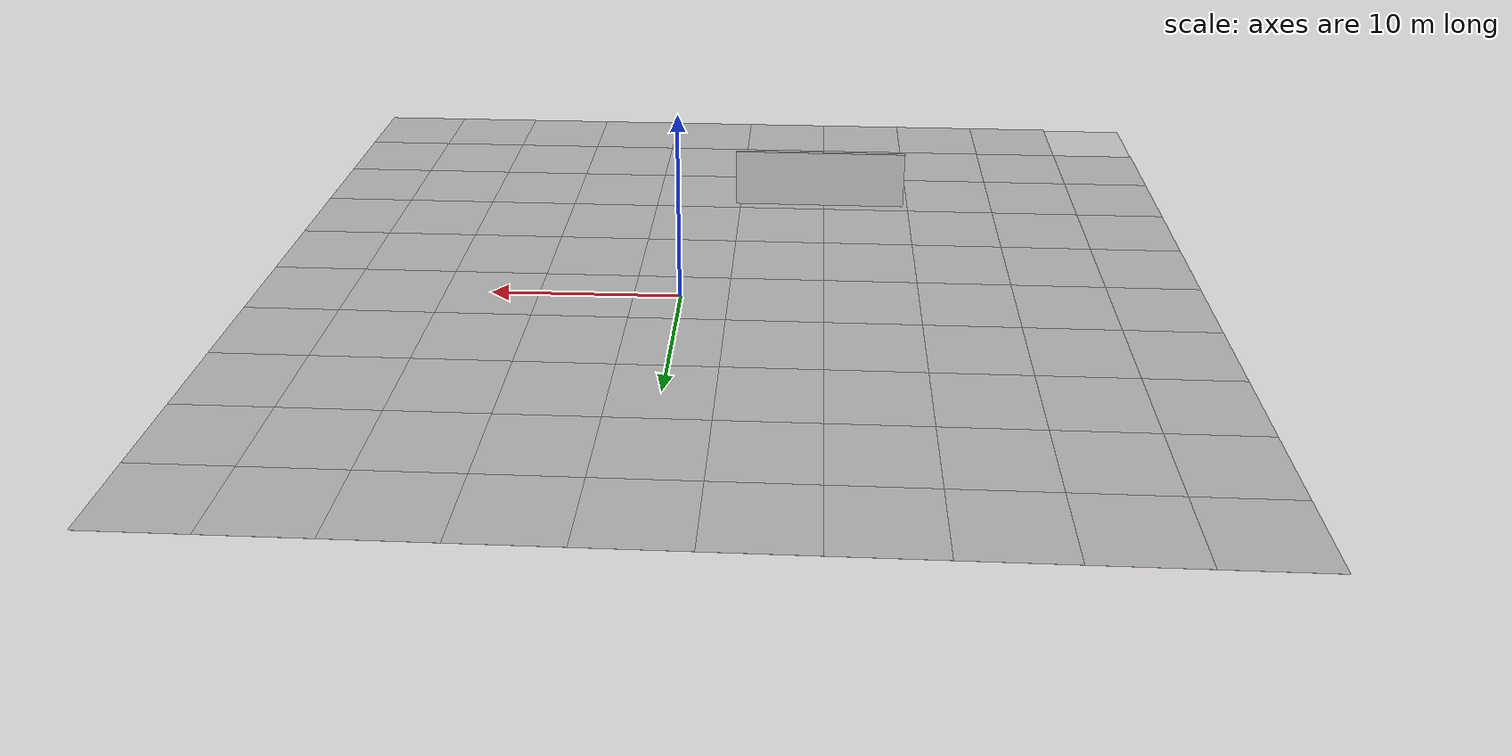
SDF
<sdf version="1.4">
 <world name="drc_practice_task_6">
  <scene><grid>false</grid><ambient>0.2 0.2 0.2 1.0</ambient></scene>
  <physics type="ode">
   <gravity>0 0 -9.81</gravity>
   <ode>
    <solver><type>quick</type><iters>50</iters><sor>1.4</sor></solver>
    <constraints>
     <cfm>0.0</cfm>
     <erp>0.2</erp>
     <contact_max_correcting_vel>100.0</contact_max_correcting_vel>
     <contact_surface_layer>0.0</contact_surface_layer>
    </constraints>
   </ode>
   <real_time_update_rate>1000</real_time_update_rate>
   <max_step_size>0.001</max_step_size>
  </physics>
  <light type="directional" name="sun">
   <pose>0 0 100 0 0 0</pose>
   <diffuse>0.9 0.9 0.9 1</diffuse>
   <specular>0.1 0.1 0.1 1</specular>
   <attenuation>
    <range>1000</range>
    <constant>0.9</constant>
    <linear>0.01</linear>
    <quadratic>0.001</quadratic>
   </attenuation>
   <direction>0.2 0.2 -0.9</direction>
  </light>
  <light type="point" name="light_bulb_2">
   <cast_shadows>false</cast_shadows>
   <pose>-10.6 -19.8 5 0 0 0</pose>
   <diffuse>0.5 0.5 0.5 1</diffuse>
   <specular>0.0 0.0 0.0 1</specular>
   <attenuation>
    <range>80</range>
    <constant>0.9</constant>
    <linear>0.01</linear>
    <quadratic>0.001</quadratic>
   </attenuation>
  </light>
  <include><uri>model://pavement_plane</uri></include>
  <include><uri>model://cutout_wall</uri><name>cutout_wall</name><pose>-7.23 -13.25 0 0 0 0</pose></include>
  <include><uri>model://table</uri><static>true</static><pose>-11.5 -15.2 0 0 0 1.5707</pose></include>
  <plugin filename="libVRCPlugin.so" name="vrc_plugin">
   <atlas><model_name>atlas</model_name><pin_link>pelvis</pin_link></atlas>
   <drc_vehicle><model_name>golf_cart</model_name><seat_link>chassis</seat_link></drc_vehicle>
   <drc_fire_hose>
    <fire_hose_model>vrc_firehose_long</fire_hose_model>
    <coupling_link>coupling</coupling_link>
    <standpipe_model>standpipe</standpipe_model>
    <spout_link>standpipe</spout_link>
    <valve_model>valve</valve_model>
    <valve_joint>valve</valve_joint>
    <thread_pitch>-1000</thread_pitch>
    <coupling_relative_pose>0.001784 -4.6e-05 0.023 1.56985 1.55991 -0.000936</coupling_relative_pose>
   </drc_fire_hose>
  </plugin>
 </world>
</sdf>

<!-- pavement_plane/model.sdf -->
<sdf version='1.4'>
  <model name='pavement_plane'>
    <static>true</static>
    <link name='link'>
      <collision name='collision'>
        <geometry>
          <plane>
            <normal>0 0 1</normal>
            <size>50 50</size>
          </plane>
        </geometry>
        <surface>
          <friction>
            <ode>
              <mu>100</mu>
              <mu2>50</mu2>
            </ode>
          </friction>
        </surface>
      </collision>

  <visual name='visual_0'>
    <pose>-25 -25 0 0 0 0</pose>

      <cast_shadows>false</cast_shadows>
      <geometry>
        <plane>
          <normal>0 0 1</normal>
          <size>5 5</size>
        </plane>
      </geometry>
      <material>
        <script>
          <uri>model://pavement_plane/materials/scripts</uri>
          <uri>model://pavement_plane/materials/textures</uri>
          <name>vrc/pavement</name>
        </script>
      </material>
    </visual>

  <visual name='visual_1'>
    <pose>-20 -25 0 0 0 0</pose>

      <cast_shadows>false</cast_shadows>
      <geometry>
        <plane>
          <normal>0 0 1</normal>
          <size>5 5</size>
        </plane>
      </geometry>
      <material>
        <script>
          <uri>model://pavement_plane/materials/scripts</uri>
          <uri>model://pavement_plane/materials/textures</uri>
          <name>vrc/pavement</name>
        </script>
      </material>
    </visual>

  <visual name='visual_2'>
    <pose>-15 -25 0 0 0 0</pose>

      <cast_shadows>false</cast_shadows>
      <geometry>
        <plane>
          <normal>0 0 1</normal>
          <size>5 5</size>
        </plane>
      </geometry>
      <material>
        <script>
          <uri>model://pavement_plane/materials/scripts</uri>
          <uri>model://pavement_plane/materials/textures</uri>
          <name>vrc/pavement</name>
        </script>
      </material>
    </visual>

  <visual name='visual_3'>
    <pose>-10 -25 0 0 0 0</pose>

      <cast_shadows>false</cast_shadows>
      <geometry>
        <plane>
          <normal>0 0 1</normal>
          <size>5 5</size>
        </plane>
      </geometry>
      <material>
        <script>
          <uri>model://pavement_plane/materials/scripts</uri>
          <uri>model://pavement_plane/materials/textures</uri>
          <name>vrc/pavement</name>
        </script>
      </material>
    </visual>

  <visual name='visual_4'>
    <pose>-5 -25 0 0 0 0</pose>

      <cast_shadows>false</cast_shadows>
      <geometry>
        <plane>
          <normal>0 0 1</normal>
          <size>5 5</size>
        </plane>
      </geometry>
      <material>
        <script>
          <uri>model://pavement_plane/materials/scripts</uri>
          <uri>model://pavement_plane/materials/textures</uri>
          <name>vrc/pavement</name>
        </script>
      </material>
    </visual>

  <visual name='visual_5'>
    <pose>0 -25 0 0 0 0</pose>

      <cast_shadows>false</cast_shadows>
      <geometry>
        <plane>
          <normal>0 0 1</normal>
          <size>5 5</size>
        </plane>
      </geometry>
      <material>
        <script>
          <uri>model://pavement_plane/materials/scripts</uri>
          <uri>model://pavement_plane/materials/textures</uri>
          <name>vrc/pavement</name>
        </script>
      </material>
    </visual>

  <visual name='visual_6'>
    <pose>5 -25 0 0 0 0</pose>

      <cast_shadows>false</cast_shadows>
      <geometry>
        <plane>
          <normal>0 0 1</normal>
          <size>5 5</size>
        </plane>
      </geometry>
      <material>
        <script>
          <uri>model://pavement_plane/materials/scripts</uri>
          <uri>model://pavement_plane/materials/textures</uri>
          <name>vrc/pavement</name>
        </script>
      </material>
    </visual>

  <visual name='visual_7'>
    <pose>10 -25 0 0 0 0</pose>

      <cast_shadows>false</cast_shadows>
      <geometry>
        <plane>
          <normal>0 0 1</normal>
          <size>5 5</size>
        </plane>
      </geometry>
      <material>
        <script>
          <uri>model://pavement_plane/materials/scripts</uri>
          <uri>model://pavement_plane/materials/textures</uri>
          <name>vrc/pavement</name>
        </script>
      </material>
    </visual>

  <visual name='visual_8'>
    <pose>15 -25 0 0 0 0</pose>

      <cast_shadows>false</cast_shadows>
      <geometry>
        <plane>
          <normal>0 0 1</normal>
          <size>5 5</size>
        </plane>
      </geometry>
      <material>
        <script>
          <uri>model://pavement_plane/materials/scripts</uri>
          <uri>model://pavement_plane/materials/textures</uri>
          <name>vrc/pavement</name>
        </script>
      </material>
    </visual>

  <visual name='visual_9'>
    <pose>20 -25 0 0 0 0</pose>

      <cast_shadows>false</cast_shadows>
      <geometry>
        <plane>
          <normal>0 0 1</normal>
          <size>5 5</size>
        </plane>
      </geometry>
      <material>
        <script>
          <uri>model://pavement_plane/materials/scripts</uri>
          <uri>model://pavement_plane/materials/textures</uri>
          <name>vrc/pavement</name>
        </script>
      </material>
    </visual>

  <visual name='visual_10'>
    <pose>-25 -20 0 0 0 0</pose>

      <cast_shadows>false</cast_shadows>
      <geometry>
        <plane>
          <normal>0 0 1</normal>
          <size>5 5</size>
        </plane>
      </geometry>
      <material>
        <script>
          <uri>model://pavement_plane/materials/scripts</uri>
          <uri>model://pavement_plane/materials/textures</uri>
          <name>vrc/pavement</name>
        </script>
      </material>
    </visual>

  <visual name='visual_11'>
    <pose>-20 -20 0 0 0 0</pose>

      <cast_shadows>false</cast_shadows>
      <geometry>
        <plane>
          <normal>0 0 1</normal>
          <size>5 5</size>
        </plane>
      </geometry>
      <material>
        <script>
          <uri>model://pavement_plane/materials/scripts</uri>
          <uri>model://pavement_plane/materials/textures</uri>
          <name>vrc/pavement</name>
        </script>
      </material>
    </visual>

  <visual name='visual_12'>
    <pose>-15 -20 0 0 0 0</pose>

      <cast_shadows>false</cast_shadows>
      <geometry>
        <plane>
          <normal>0 0 1</normal>
          <size>5 5</size>
        </plane>
      </geometry>
      <material>
        <script>
          <uri>model://pavement_plane/materials/scripts</uri>
          <uri>model://pavement_plane/materials/textures</uri>
          <name>vrc/pavement</name>
        </script>
      </material>
    </visual>

  <visual name='visual_13'>
    <pose>-10 -20 0 0 0 0</pose>

      <cast_shadows>false</cast_shadows>
      <geometry>
        <plane>
          <normal>0 0 1</normal>
          <size>5 5</size>
        </plane>
      </geometry>
      <material>
        <script>
          <uri>model://pavement_plane/materials/scripts</uri>
          <uri>model://pavement_plane/materials/textures</uri>
          <name>vrc/pavement</name>
        </script>
      </material>
    </visual>

  <visual name='visual_14'>
    <pose>-5 -20 0 0 0 0</pose>

      <cast_shadows>false</cast_shadows>
      <geometry>
        <plane>
          <normal>0 0 1</normal>
          <size>5 5</size>
        </plane>
      </geometry>
      <material>
        <script>
          <uri>model://pavement_plane/materials/scripts</uri>
          <uri>model://pavement_plane/materials/textures</uri>
          <name>vrc/pavement</name>
        </script>
      </material>
    </visual>

  <visual name='visual_15'>
    <pose>0 -20 0 0 0 0</pose>

      <cast_shadows>false</cast_shadows>
      <geometry>
        <plane>
          <normal>0 0 1</normal>
          <size>5 5</size>
        </plane>
      </geometry>
      <material>
        <script>
          <uri>model://pavement_plane/materials/scripts</uri>
          <uri>model://pavement_plane/materials/textures</uri>
          <name>vrc/pavement</name>
        </script>
      </material>
    </visual>

  <visual name='visual_16'>
    <pose>5 -20 0 0 0 0</pose>

      <cast_shadows>false</cast_shadows>
      <geometry>
        <plane>
          <normal>0 0 1</normal>
          <size>5 5</size>
        </plane>
      </geometry>
      <material>
        <script>
          <uri>model://pavement_plane/materials/scripts</uri>
          <uri>model://pavement_plane/materials/textures</uri>
          <name>vrc/pavement</name>
        </script>
      </material>
    </visual>

  <visual name='visual_17'>
    <pose>10 -20 0 0 0 0</pose>

      <cast_shadows>false</cast_shadows>
      <geometry>
        <plane>
          <normal>0 0 1</normal>
          <size>5 5</size>
        </plane>
      </geometry>
      <material>
        <script>
          <uri>model://pavement_plane/materials/scripts</uri>
          <uri>model://pavement_plane/materials/textures</uri>
          <name>vrc/pavement</name>
        </script>
      </material>
    </visual>

  <visual name='visual_18'>
    <pose>15 -20 0 0 0 0</pose>

      <cast_shadows>false</cast_shadows>
      <geometry>
        <plane>
          <normal>0 0 1</normal>
          <size>5 5</size>
        </plane>
      </geometry>
      <material>
        <script>
          <uri>model://pavement_plane/materials/scripts</uri>
          <uri>model://pavement_plane/materials/textures</uri>
          <name>vrc/pavement</name>
        </script>
      </material>
    </visual>

  <visual name='visual_19'>
    <pose>20 -20 0 0 0 0</pose>

      <cast_shadows>false</cast_shadows>
      <geometry>
        <plane>
          <normal>0 0 1</normal>
          <size>5 5</size>
        </plane>
      </geometry>
      <material>
        <script>
          <uri>model://pavement_plane/materials/scripts</uri>
          <uri>model://pavement_plane/materials/textures</uri>
          <name>vrc/pavement</name>
        </script>
      </material>
    </visual>

  <visual name='visual_20'>
    <pose>-25 -15 0 0 0 0</pose>

      <cast_shadows>false</cast_shadows>
      <geometry>
        <plane>
          <normal>0 0 1</normal>
          <size>5 5</size>
        </plane>
      </geometry>
      <material>
        <script>
          <uri>model://pavement_plane/materials/scripts</uri>
          <uri>model://pavement_plane/materials/textures</uri>
          <name>vrc/pavement</name>
        </script>
      </material>
    </visual>

  <visual name='visual_21'>
    <pose>-20 -15 0 0 0 0</pose>

      <cast_shadows>false</cast_shadows>
      <geometry>
        <plane>
          <normal>0 0 1</normal>
          <size>5 5</size>
        </plane>
      </geometry>
      <material>
        <script>
          <uri>model://pavement_plane/materials/scripts</uri>
          <uri>model://pavement_plane/materials/textures</uri>
          <name>vrc/pavement</name>
        </script>
      </material>
    </visual>

  <visual name='visual_22'>
    <pose>-15 -15 0 0 0 0</pose>

      <cast_shadows>false</cast_shadows>
      <geometry>
        <plane>
          <normal>0 0 1</normal>
          <size>5 5</size>
        </plane>
      </geometry>
      <material>
        <script>
          <uri>model://pavement_plane/materials/scripts</uri>
          <uri>model://pavement_plane/materials/textures</uri>
          <name>vrc/pavement</name>
        </script>
      </material>
    </visual>

  <visual name='visual_23'>
    <pose>-10 -15 0 0 0 0</pose>

      <cast_shadows>false</cast_shadows>
      <geometry>
        <plane>
          <normal>0 0 1</normal>
          <size>5 5</size>
        </plane>
      </geometry>
      <material>
        <script>
          <uri>model://pavement_plane/materials/scripts</uri>
          <uri>model://pavement_plane/materials/textures</uri>
          <name>vrc/pavement</name>
        </script>
      </material>
    </visual>

  <visual name='visual_24'>
    <pose>-5 -15 0 0 0 0</pose>

      <cast_shadows>false</cast_shadows>
      <geometry>
        <plane>
          <normal>0 0 1</normal>
          <size>5 5</size>
        </plane>
      </geometry>
      <material>
        <script>
          <uri>model://pavement_plane/materials/scripts</uri>
          <uri>model://pavement_plane/materials/textures</uri>
          <name>vrc/pavement</name>
        </script>
      </material>
    </visual>

  <visual name='visual_25'>
    <pose>0 -15 0 0 0 0</pose>

      <cast_shadows>false</cast_shadows>
      <geometry>
        <plane>
          <normal>0 0 1</normal>
          <size>5 5</size>
        </plane>
      </geometry>
      <material>
        <script>
          <uri>model://pavement_plane/materials/scripts</uri>
          <uri>model://pavement_plane/materials/textures</uri>
          <name>vrc/pavement</name>
        </script>
      </material>
    </visual>

  <visual name='visual_26'>
    <pose>5 -15 0 0 0 0</pose>

      <cast_shadows>false</cast_shadows>
      <geometry>
        <plane>
          <normal>0 0 1</normal>
          <size>5 5</size>
        </plane>
      </geometry>
      <material>
        <script>
          <uri>model://pavement_plane/materials/scripts</uri>
          <uri>model://pavement_plane/materials/textures</uri>
          <name>vrc/pavement</name>
        </script>
      </material>
    </visual>

  <visual name='visual_27'>
    <pose>10 -15 0 0 0 0</pose>

      <cast_shadows>false</cast_shadows>
      <geometry>
        <plane>
          <normal>0 0 1</normal>
          <size>5 5</size>
        </plane>
      </geometry>
      <material>
        <script>
          <uri>model://pavement_plane/materials/scripts</uri>
          <uri>model://pavement_plane/materials/textures</uri>
          <name>vrc/pavement</name>
        </script>
      </material>
    </visual>

  <visual name='visual_28'>
    <pose>15 -15 0 0 0 0</pose>

      <cast_shadows>false</cast_shadows>
      <geometry>
        <plane>
          <normal>0 0 1</normal>
          <size>5 5</size>
        </plane>
      </geometry>
      <material>
        <script>
          <uri>model://pavement_plane/materials/scripts</uri>
          <uri>model://pavement_plane/materials/textures</uri>
          <name>vrc/pavement</name>
        </script>
      </material>
    </visual>

  <visual name='visual_29'>
    <pose>20 -15 0 0 0 0</pose>

      <cast_shadows>false</cast_shadows>
      <geometry>
        <plane>
          <normal>0 0 1</normal>
          <size>5 5</size>
        </plane>
      </geometry>
      <material>
        <script>
          <uri>model://pavement_plane/materials/scripts</uri>
          <uri>model://pavement_plane/materials/textures</uri>
          <name>vrc/pavement</name>
        </script>
      </material>
    </visual>

  <visual name='visual_30'>
    <pose>-25 -10 0 0 0 0</pose>

      <cast_shadows>false</cast_shadows>
      <geometry>
        <plane>
          <normal>0 0 1</normal>
          <size>5 5</size>
        </plane>
      </geometry>
      <material>
        <script>
          <uri>model://pavement_plane/materials/scripts</uri>
          <uri>model://pavement_plane/materials/textures</uri>
          <name>vrc/pavement</name>
        </script>
      </material>
    </visual>

  <visual name='visual_31'>
    <pose>-20 -10 0 0 0 0</pose>

      <cast_shadows>false</cast_shadows>
      <geometry>
        <plane>
          <normal>0 0 1</normal>
          <size>5 5</size>
        </plane>
      </geometry>
      <material>
        <script>
          <uri>model://pavement_plane/materials/scripts</uri>
          <uri>model://pavement_plane/materials/textures</uri>
          <name>vrc/pavement</name>
        </script>
      </material>
    </visual>

  <visual name='visual_32'>
    <pose>-15 -10 0 0 0 0</pose>

      <cast_shadows>false</cast_shadows>
      <geometry>
        <plane>
          <normal>0 0 1</normal>
          <size>5 5</size>
        </plane>
      </geometry>
      <material>
        <script>
          <uri>model://pavement_plane/materials/scripts</uri>
          <uri>model://pavement_plane/materials/textures</uri>
          <name>vrc/pavement</name>
        </script>
      </material>
    </visual>

  <visual name='visual_33'>
    <pose>-10 -10 0 0 0 0</pose>

      <cast_shadows>false</cast_shadows>
      <geometry>
        <plane>
          <normal>0 0 1</normal>
          <size>5 5</size>
        </plane>
      </geometry>
      <material>
        <script>
          <uri>model://pavement_plane/materials/scripts</uri>
          <uri>model://pavement_plane/materials/textures</uri>
          <name>vrc/pavement</name>
        </script>
      </material>
    </visual>

  <visual name='visual_34'>
    <pose>-5 -10 0 0 0 0</pose>

      <cast_shadows>false</cast_shadows>
      <geometry>
        <plane>
          <normal>0 0 1</normal>
          <size>5 5</size>
        </plane>
      </geometry>
      <material>
        <script>
          <uri>model://pavement_plane/materials/scripts</uri>
          <uri>model://pavement_plane/materials/textures</uri>
          <name>vrc/pavement</name>
        </script>
      </material>
    </visual>

  <visual name='visual_35'>
    <pose>0 -10 0 0 0 0</pose>

      <cast_shadows>false</cast_shadows>
      <geometry>
        <plane>
          <normal>0 0 1</normal>
          <size>5 5</size>
        </plane>
      </geometry>
      <material>
        <script>
          <uri>model://pavement_plane/materials/scripts</uri>
          <uri>model://pavement_plane/materials/textures</uri>
          <name>vrc/pavement</name>
        </script>
      </material>
    </visual>

  <visual name='visual_36'>
    <pose>5 -10 0 0 0 0</pose>

      <cast_shadows>false</cast_shadows>
      <geometry>
        <plane>
          <normal>0 0 1</normal>
          <size>5 5</size>
        </plane>
      </geometry>
      <material>
        <script>
          <uri>model://pavement_plane/materials/scripts</uri>
          <uri>model://pavement_plane/materials/textures</uri>
          <name>vrc/pavement</name>
        </script>
      </material>
    </visual>

  <visual name='visual_37'>
    <pose>10 -10 0 0 0 0</pose>

      <cast_shadows>false</cast_shadows>
      <geometry>
        <plane>
          <normal>0 0 1</normal>
          <size>5 5</size>
        </plane>
      </geometry>
      <material>
        <script>
          <uri>model://pavement_plane/materials/scripts</uri>
          <uri>model://pavement_plane/materials/textures</uri>
          <name>vrc/pavement</name>
        </script>
      </material>
    </visual>

  <visual name='visual_38'>
    <pose>15 -10 0 0 0 0</pose>

      <cast_shadows>false</cast_shadows>
      <geometry>
        <plane>
          <normal>0 0 1</normal>
          <size>5 5</size>
        </plane>
      </geometry>
      <material>
        <script>
          <uri>model://pavement_plane/materials/scripts</uri>
          <uri>model://pavement_plane/materials/textures</uri>
          <name>vrc/pavement</name>
        </script>
      </material>
    </visual>

  <visual name='visual_39'>
    <pose>20 -10 0 0 0 0</pose>

      <cast_shadows>false</cast_shadows>
      <geometry>
        <plane>
          <normal>0 0 1</normal>
          <size>5 5</size>
        </plane>
      </geometry>
      <material>
        <script>
          <uri>model://pavement_plane/materials/scripts</uri>
          <uri>model://pavement_plane/materials/textures</uri>
          <name>vrc/pavement</name>
        </script>
      </material>
    </visual>

  <visual name='visual_40'>
    <pose>-25 -5 0 0 0 0</pose>

      <cast_shadows>false</cast_shadows>
      <geometry>
        <plane>
          <normal>0 0 1</normal>
          <size>5 5</size>
        </plane>
      </geometry>
      <material>
        <script>
          <uri>model://pavement_plane/materials/scripts</uri>
          <uri>model://pavement_plane/materials/textures</uri>
          <name>vrc/pavement</name>
        </script>
      </material>
    </visual>

  <visual name='visual_41'>
    <pose>-20 -5 0 0 0 0</pose>

      <cast_shadows>false</cast_shadows>
      <geometry>
        <plane>
          <normal>0 0 1</normal>
          <size>5 5</size>
        </plane>
      </geometry>
      <material>
        <script>
          <uri>model://pavement_plane/materials/scripts</uri>
          <uri>model://pavement_plane/materials/textures</uri>
          <name>vrc/pavement</name>
        </script>
      </material>
    </visual>

  <visual name='visual_42'>
    <pose>-15 -5 0 0 0 0</pose>

      <cast_shadows>false</cast_shadows>
      <geometry>
        <plane>
          <normal>0 0 1</normal>
          <size>5 5</size>
        </plane>
      </geometry>
      <material>
        <script>
          <uri>model://pavement_plane/materials/scripts</uri>
          <uri>model://pavement_plane/materials/textures</uri>
          <name>vrc/pavement</name>
        </script>
      </material>
    </visual>

  <visual name='visual_43'>
    <pose>-10 -5 0 0 0 0</pose>

      <cast_shadows>false</cast_shadows>
      <geometry>
        <plane>
          <normal>0 0 1</normal>
          <size>5 5</size>
        </plane>
      </geometry>
      <material>
        <script>
          <uri>model://pavement_plane/materials/scripts</uri>
          <uri>model://pavement_plane/materials/textures</uri>
          <name>vrc/pavement</name>
        </script>
      </material>
    </visual>

  <visual name='visual_44'>
    <pose>-5 -5 0 0 0 0</pose>

      <cast_shadows>false</cast_shadows>
      <geometry>
        <plane>
          <normal>0 0 1</normal>
          <size>5 5</size>
        </plane>
      </geometry>
      <material>
        <script>
          <uri>model://pavement_plane/materials/scripts</uri>
          <uri>model://pavement_plane/materials/textures</uri>
          <name>vrc/pavement</name>
        </script>
      </material>
    </visual>

  <visual name='visual_45'>
    <pose>0 -5 0 0 0 0</pose>

      <cast_shadows>false</cast_shadows>
      <geometry>
        <plane>
          <normal>0 0 1</normal>
          <size>5 5</size>
        </plane>
      </geometry>
      <material>
        <script>
          <uri>model://pavement_plane/materials/scripts</uri>
          <uri>model://pavement_plane/materials/textures</uri>
          <name>vrc/pavement</name>
        </script>
      </material>
    </visual>

  <visual name='visual_46'>
    <pose>5 -5 0 0 0 0</pose>

      <cast_shadows>false</cast_shadows>
      <geometry>
        <plane>
          <normal>0 0 1</normal>
          <size>5 5</size>
        </plane>
      </geometry>
      <material>
        <script>
          <uri>model://pavement_plane/materials/scripts</uri>
          <uri>model://pavement_plane/materials/textures</uri>
          <name>vrc/pavement</name>
        </script>
      </material>
    </visual>

  <visual name='visual_47'>
    <pose>10 -5 0 0 0 0</pose>

      <cast_shadows>false</cast_shadows>
      <geometry>
        <plane>
          <normal>0 0 1</normal>
          <size>5 5</size>
        </plane>
      </geometry>
      <material>
        <script>
          <uri>model://pavement_plane/materials/scripts</uri>
          <uri>model://pavement_plane/materials/textures</uri>
          <name>vrc/pavement</name>
        </script>
      </material>
    </visual>

  <visual name='visual_48'>
    <pose>15 -5 0 0 0 0</pose>

      <cast_shadows>false</cast_shadows>
      <geometry>
        <plane>
          <normal>0 0 1</normal>
          <size>5 5</size>
        </plane>
      </geometry>
      <material>
        <script>
          <uri>model://pavement_plane/materials/scripts</uri>
          <uri>model://pavement_plane/materials/textures</uri>
          <name>vrc/pavement</name>
        </script>
      </material>
    </visual>

  <visual name='visual_49'>
    <pose>20 -5 0 0 0 0</pose>

      <cast_shadows>false</cast_shadows>
      <geometry>
        <plane>
          <normal>0 0 1</normal>
          <size>5 5</size>
        </plane>
      </geometry>
      <material>
        <script>
          <uri>model://pavement_plane/materials/scripts</uri>
          <uri>model://pavement_plane/materials/textures</uri>
          <name>vrc/pavement</name>
        </script>
      </material>
    </visual>

  <visual name='visual_50'>
    <pose>-25 0 0 0 0 0</pose>

      <cast_shadows>false</cast_shadows>
      <geometry>
        <plane>
          <normal>0 0 1</normal>
          <size>5 5</size>
        </plane>
      </geometry>
      <material>
        <script>
          <uri>model://pavement_plane/materials/scripts</uri>
          <uri>model://pavement_plane/materials/textures</uri>
          <name>vrc/pavement</name>
        </script>
      </material>
    </visual>

  <visual name='visual_51'>
    <pose>-20 0 0 0 0 0</pose>

      <cast_shadows>false</cast_shadows>
      <geometry>
        <plane>
          <normal>0 0 1</normal>
          <size>5 5</size>
        </plane>
      </geometry>
      <material>
        <script>
          <uri>model://pavement_plane/materials/scripts</uri>
          <uri>model://pavement_plane/materials/textures</uri>
          <name>vrc/pavement</name>
        </script>
      </material>
    </visual>

  <visual name='visual_52'>
    <pose>-15 0 0 0 0 0</pose>

      <cast_shadows>false</cast_shadows>
      <geometry>
        <plane>
          <normal>0 0 1</normal>
          <size>5 5</size>
        </plane>
      </geometry>
      <material>
        <script>
          <uri>model://pavement_plane/materials/scripts</uri>
          <uri>model://pavement_plane/materials/textures</uri>
          <name>vrc/pavement</name>
        </script>
      </material>
    </visual>

  <visual name='visual_53'>
    <pose>-10 0 0 0 0 0</pose>

      <cast_shadows>false</cast_shadows>
      <geometry>
        <plane>
          <normal>0 0 1</normal>
          <size>5 5</size>
        </plane>
      </geometry>
      <material>
        <script>
          <uri>model://pavement_plane/materials/scripts</uri>
          <uri>model://pavement_plane/materials/textures</uri>
          <name>vrc/pavement</name>
        </script>
      </material>
    </visual>

  <visual name='visual_54'>
    <pose>-5 0 0 0 0 0</pose>

      <cast_shadows>false</cast_shadows>
      <geometry>
        <plane>
          <normal>0 0 1</normal>
          <size>5 5</size>
        </plane>
      </geometry>
      <material>
        <script>
          <uri>model://pavement_plane/materials/scripts</uri>
          <uri>model://pavement_plane/materials/textures</uri>
          <name>vrc/pavement</name>
        </script>
      </material>
    </visual>

  <visual name='visual_55'>
    <pose>0 0 0 0 0 0</pose>

      <cast_shadows>false</cast_shadows>
      <geometry>
        <plane>
          <normal>0 0 1</normal>
          <size>5 5</size>
        </plane>
      </geometry>
      <material>
        <script>
          <uri>model://pavement_plane/materials/scripts</uri>
          <uri>model://pavement_plane/materials/textures</uri>
          <name>vrc/pavement</name>
        </script>
      </material>
    </visual>

  <visual name='visual_56'>
    <pose>5 0 0 0 0 0</pose>

      <cast_shadows>false</cast_shadows>
      <geometry>
        <plane>
          <normal>0 0 1</normal>
          <size>5 5</size>
        </plane>
      </geometry>
      <material>
        <script>
          <uri>model://pavement_plane/materials/scripts</uri>
          <uri>model://pavement_plane/materials/textures</uri>
          <name>vrc/pavement</name>
        </script>
      </material>
    </visual>

  <visual name='visual_57'>
    <pose>10 0 0 0 0 0</pose>

      <cast_shadows>false</cast_shadows>
      <geometry>
        <plane>
          <normal>0 0 1</normal>
          <size>5 5</size>
        </plane>
      </geometry>
      <material>
        <script>
          <uri>model://pavement_plane/materials/scripts</uri>
          <uri>model://pavement_plane/materials/textures</uri>
          <name>vrc/pavement</name>
        </script>
      </material>
    </visual>

  <visual name='visual_58'>
    <pose>15 0 0 0 0 0</pose>

      <cast_shadows>false</cast_shadows>
      <geometry>
        <plane>
          <normal>0 0 1</normal>
          <size>5 5</size>
        </plane>
      </geometry>
      <material>
        <script>
          <uri>model://pavement_plane/materials/scripts</uri>
          <uri>model://pavement_plane/materials/textures</uri>
          <name>vrc/pavement</name>
        </script>
      </material>
    </visual>

  <visual name='visual_59'>
    <pose>20 0 0 0 0 0</pose>

      <cast_shadows>false</cast_shadows>
      <geometry>
        <plane>
          <normal>0 0 1</normal>
          <size>5 5</size>
        </plane>
      </geometry>
      <material>
        <script>
          <uri>model://pavement_plane/materials/scripts</uri>
          <uri>model://pavement_plane/materials/textures</uri>
          <name>vrc/pavement</name>
        </script>
      </material>
    </visual>

  <visual name='visual_60'>
    <pose>-25 5 0 0 0 0</pose>

      <cast_shadows>false</cast_shadows>
      <geometry>
        <plane>
          <normal>0 0 1</normal>
          <size>5 5</size>
        </plane>
      </geometry>
      <material>
        <script>
          <uri>model://pavement_plane/materials/scripts</uri>
          <uri>model://pavement_plane/materials/textures</uri>
          <name>vrc/pavement</name>
        </script>
      </material>
    </visual>

  <visual name='visual_61'>
    <pose>-20 5 0 0 0 0</pose>

      <cast_shadows>false</cast_shadows>
      <geometry>
        <plane>
          <normal>0 0 1</normal>
          <size>5 5</size>
        </plane>
      </geometry>
      <material>
        <script>
          <uri>model://pavement_plane/materials/scripts</uri>
          <uri>model://pavement_plane/materials/textures</uri>
          <name>vrc/pavement</name>
        </script>
      </material>
    </visual>

  <visual name='visual_62'>
    <pose>-15 5 0 0 0 0</pose>

      <cast_shadows>false</cast_shadows>
      <geometry>
        <plane>
          <normal>0 0 1</normal>
          <size>5 5</size>
        </plane>
      </geometry>
      <material>
        <script>
          <uri>model://pavement_plane/materials/scripts</uri>
          <uri>model://pavement_plane/materials/textures</uri>
          <name>vrc/pavement</name>
        </script>
      </material>
    </visual>

  <visual name='visual_63'>
    <pose>-10 5 0 0 0 0</pose>

      <cast_shadows>false</cast_shadows>
      <geometry>
        <plane>
          <normal>0 0 1</normal>
          <size>5 5</size>
        </plane>
      </geometry>
      <material>
        <script>
          <uri>model://pavement_plane/materials/scripts</uri>
          <uri>model://pavement_plane/materials/textures</uri>
          <name>vrc/pavement</name>
        </script>
      </material>
    </visual>

  <visual name='visual_64'>
    <pose>-5 5 0 0 0 0</pose>

      <cast_shadows>false</cast_shadows>
      <geometry>
        <plane>
          <normal>0 0 1</normal>
          <size>5 5</size>
        </plane>
      </geometry>
      <material>
        <script>
          <uri>model://pavement_plane/materials/scripts</uri>
          <uri>model://pavement_plane/materials/textures</uri>
          <name>vrc/pavement</name>
        </script>
      </material>
    </visual>

  <visual name='visual_65'>
    <pose>0 5 0 0 0 0</pose>

      <cast_shadows>false</cast_shadows>
      <geometry>
        <plane>
          <normal>0 0 1</normal>
          <size>5 5</size>
        </plane>
      </geometry>
      <material>
        <script>
          <uri>model://pavement_plane/materials/scripts</uri>
          <uri>model://pavement_plane/materials/textures</uri>
          <name>vrc/pavement</name>
        </script>
      </material>
    </visual>

  <visual name='visual_66'>
    <pose>5 5 0 0 0 0</pose>

      <cast_shadows>false</cast_shadows>
      <geometry>
        <plane>
          <normal>0 0 1</normal>
          <size>5 5</size>
        </plane>
      </geometry>
      <material>
        <script>
          <uri>model://pavement_plane/materials/scripts</uri>
          <uri>model://pavement_plane/materials/textures</uri>
          <name>vrc/pavement</name>
        </script>
      </material>
    </visual>

  <visual name='visual_67'>
    <pose>10 5 0 0 0 0</pose>

      <cast_shadows>false</cast_shadows>
      <geometry>
        <plane>
          <normal>0 0 1</normal>
          <size>5 5</size>
        </plane>
      </geometry>
      <material>
        <script>
          <uri>model://pavement_plane/materials/scripts</uri>
          <uri>model://pavement_plane/materials/textures</uri>
          <name>vrc/pavement</name>
        </script>
      </material>
    </visual>

  <visual name='visual_68'>
    <pose>15 5 0 0 0 0</pose>

      <cast_shadows>false</cast_shadows>
      <geometry>
        <plane>
          <normal>0 0 1</normal>
          <size>5 5</size>
        </plane>
      </geometry>
      <material>
        <script>
          <uri>model://pavement_plane/materials/scripts</uri>
          <uri>model://pavement_plane/materials/textures</uri>
          <name>vrc/pavement</name>
        </script>
      </material>
    </visual>

  <visual name='visual_69'>
    <pose>20 5 0 0 0 0</pose>

      <cast_shadows>false</cast_shadows>
      <geometry>
        <plane>
          <normal>0 0 1</normal>
          <size>5 5</size>
        </plane>
      </geometry>
      <material>
        <script>
          <uri>model://pavement_plane/materials/scripts</uri>
          <uri>model://pavement_plane/materials/textures</uri>
          <name>vrc/pavement</name>
        </script>
      </material>
    </visual>

  <visual name='visual_70'>
    <pose>-25 10 0 0 0 0</pose>

      <cast_shadows>false</cast_shadows>
      <geometry>
        <plane>
          <normal>0 0 1</normal>
          <size>5 5</size>
        </plane>
      </geometry>
      <material>
        <script>
          <uri>model://pavement_plane/materials/scripts</uri>
          <uri>model://pavement_plane/materials/textures</uri>
          <name>vrc/pavement</name>
        </script>
      </material>
    </visual>

  <visual name='visual_71'>
    <pose>-20 10 0 0 0 0</pose>

      <cast_shadows>false</cast_shadows>
      <geometry>
        <plane>
          <normal>0 0 1</normal>
          <size>5 5</size>
        </plane>
      </geometry>
      <material>
        <script>
          <uri>model://pavement_plane/materials/scripts</uri>
          <uri>model://pavement_plane/materials/textures</uri>
          <name>vrc/pavement</name>
        </script>
      </material>
    </visual>

  <visual name='visual_72'>
    <pose>-15 10 0 0 0 0</pose>

      <cast_shadows>false</cast_shadows>
      <geometry>
        <plane>
          <normal>0 0 1</normal>
          <size>5 5</size>
        </plane>
      </geometry>
      <material>
        <script>
          <uri>model://pavement_plane/materials/scripts</uri>
          <uri>model://pavement_plane/materials/textures</uri>
          <name>vrc/pavement</name>
        </script>
      </material>
    </visual>

  <visual name='visual_73'>
    <pose>-10 10 0 0 0 0</pose>

      <cast_shadows>false</cast_shadows>
      <geometry>
        <plane>
          <normal>0 0 1</normal>
          <size>5 5</size>
        </plane>
      </geometry>
      <material>
        <script>
          <uri>model://pavement_plane/materials/scripts</uri>
          <uri>model://pavement_plane/materials/textures</uri>
          <name>vrc/pavement</name>
        </script>
      </material>
    </visual>

  <visual name='visual_74'>
    <pose>-5 10 0 0 0 0</pose>

      <cast_shadows>false</cast_shadows>
      <geometry>
        <plane>
          <normal>0 0 1</normal>
          <size>5 5</size>
        </plane>
      </geometry>
      <material>
        <script>
          <uri>model://pavement_plane/materials/scripts</uri>
          <uri>model://pavement_plane/materials/textures</uri>
          <name>vrc/pavement</name>
        </script>
      </material>
    </visual>

  <visual name='visual_75'>
    <pose>0 10 0 0 0 0</pose>

      <cast_shadows>false</cast_shadows>
      <geometry>
        <plane>
          <normal>0 0 1</normal>
          <size>5 5</size>
        </plane>
      </geometry>
      <material>
        <script>
          <uri>model://pavement_plane/materials/scripts</uri>
          <uri>model://pavement_plane/materials/textures</uri>
          <name>vrc/pavement</name>
        </script>
      </material>
    </visual>

  <visual name='visual_76'>
    <pose>5 10 0 0 0 0</pose>

      <cast_shadows>false</cast_shadows>
      <geometry>
        <plane>
          <normal>0 0 1</normal>
          <size>5 5</size>
        </plane>
      </geometry>
      <material>
        <script>
          <uri>model://pavement_plane/materials/scripts</uri>
          <uri>model://pavement_plane/materials/textures</uri>
          <name>vrc/pavement</name>
        </script>
      </material>
    </visual>

  <visual name='visual_77'>
    <pose>10 10 0 0 0 0</pose>

      <cast_shadows>false</cast_shadows>
      <geometry>
        <plane>
          <normal>0 0 1</normal>
          <size>5 5</size>
        </plane>
      </geometry>
      <material>
        <script>
          <uri>model://pavement_plane/materials/scripts</uri>
          <uri>model://pavement_plane/materials/textures</uri>
          <name>vrc/pavement</name>
        </script>
      </material>
    </visual>

  <visual name='visual_78'>
    <pose>15 10 0 0 0 0</pose>

      <cast_shadows>false</cast_shadows>
      <geometry>
        <plane>
          <normal>0 0 1</normal>
          <size>5 5</size>
        </plane>
      </geometry>
      <material>
        <script>
          <uri>model://pavement_plane/materials/scripts</uri>
          <uri>model://pavement_plane/materials/textures</uri>
          <name>vrc/pavement</name>
        </script>
      </material>
    </visual>

  <visual name='visual_79'>
    <pose>20 10 0 0 0 0</pose>

      <cast_shadows>false</cast_shadows>
      <geometry>
        <plane>
          <normal>0 0 1</normal>
          <size>5 5</size>
        </plane>
      </geometry>
      <material>
        <script>
          <uri>model://pavement_plane/materials/scripts</uri>
          <uri>model://pavement_plane/materials/textures</uri>
          <name>vrc/pavement</name>
        </script>
      </material>
    </visual>

  <visual name='visual_80'>
    <pose>-25 15 0 0 0 0</pose>

      <cast_shadows>false</cast_shadows>
      <geometry>
        <plane>
          <normal>0 0 1</normal>
          <size>5 5</size>
        </plane>
      </geometry>
      <material>
        <script>
          <uri>model://pavement_plane/materials/scripts</uri>
          <uri>model://pavement_plane/materials/textures</uri>
          <name>vrc/pavement</name>
        </script>
      </material>
    </visual>

  <visual name='visual_81'>
    <pose>-20 15 0 0 0 0</pose>

      <cast_shadows>false</cast_shadows>
      <geometry>
        <plane>
          <normal>0 0 1</normal>
          <size>5 5</size>
        </plane>
      </geometry>
      <material>
        <script>
          <uri>model://pavement_plane/materials/scripts</uri>
          <uri>model://pavement_plane/materials/textures</uri>
          <name>vrc/pavement</name>
        </script>
      </material>
    </visual>

  <visual name='visual_82'>
    <pose>-15 15 0 0 0 0</pose>

      <cast_shadows>false</cast_shadows>
      <geometry>
        <plane>
          <normal>0 0 1</normal>
          <size>5 5</size>
        </plane>
      </geometry>
      <material>
        <script>
          <uri>model://pavement_plane/materials/scripts</uri>
          <uri>model://pavement_plane/materials/textures</uri>
          <name>vrc/pavement</name>
        </script>
      </material>
    </visual>

  <visual name='visual_83'>
    <pose>-10 15 0 0 0 0</pose>

      <cast_shadows>false</cast_shadows>
      <geometry>
        <plane>
          <normal>0 0 1</normal>
          <size>5 5</size>
        </plane>
      </geometry>
      <material>
        <script>
          <uri>model://pavement_plane/materials/scripts</uri>
          <uri>model://pavement_plane/materials/textures</uri>
          <name>vrc/pavement</name>
        </script>
      </material>
    </visual>

  <visual name='visual_84'>
    <pose>-5 15 0 0 0 0</pose>

      <cast_shadows>false</cast_shadows>
      <geometry>
        <plane>
          <normal>0 0 1</normal>
          <size>5 5</size>
        </plane>
      </geometry>
      <material>
        <script>
          <uri>model://pavement_plane/materials/scripts</uri>
          <uri>model://pavement_plane/materials/textures</uri>
          <name>vrc/pavement</name>
        </script>
      </material>
    </visual>

  <visual name='visual_85'>
    <pose>0 15 0 0 0 0</pose>

      <cast_shadows>false</cast_shadows>
      <geometry>
        <plane>
          <normal>0 0 1</normal>
          <size>5 5</size>
        </plane>
      </geometry>
      <material>
        <script>
          <uri>model://pavement_plane/materials/scripts</uri>
          <uri>model://pavement_plane/materials/textures</uri>
          <name>vrc/pavement</name>
        </script>
      </material>
    </visual>

  <visual name='visual_86'>
    <pose>5 15 0 0 0 0</pose>

      <cast_shadows>false</cast_shadows>
      <geometry>
        <plane>
          <normal>0 0 1</normal>
          <size>5 5</size>
        </plane>
      </geometry>
      <material>
        <script>
          <uri>model://pavement_plane/materials/scripts</uri>
          <uri>model://pavement_plane/materials/textures</uri>
          <name>vrc/pavement</name>
        </script>
      </material>
    </visual>

  <visual name='visual_87'>
    <pose>10 15 0 0 0 0</pose>

      <cast_shadows>false</cast_shadows>
      <geometry>
        <plane>
          <normal>0 0 1</normal>
          <size>5 5</size>
        </plane>
      </geometry>
      <material>
        <script>
          <uri>model://pavement_plane/materials/scripts</uri>
          <uri>model://pavement_plane/materials/textures</uri>
          <name>vrc/pavement</name>
        </script>
      </material>
    </visual>

  <visual name='visual_88'>
    <pose>15 15 0 0 0 0</pose>

      <cast_shadows>false</cast_shadows>
      <geometry>
        <plane>
          <normal>0 0 1</normal>
          <size>5 5</size>
        </plane>
      </geometry>
      <material>
        <script>
          <uri>model://pavement_plane/materials/scripts</uri>
          <uri>model://pavement_plane/materials/textures</uri>
          <name>vrc/pavement</name>
        </script>
      </material>
    </visual>

  <visual name='visual_89'>
    <pose>20 15 0 0 0 0</pose>

      <cast_shadows>false</cast_shadows>
      <geometry>
        <plane>
          <normal>0 0 1</normal>
          <size>5 5</size>
        </plane>
      </geometry>
      <material>
        <script>
          <uri>model://pavement_plane/materials/scripts</uri>
          <uri>model://pavement_plane/materials/textures</uri>
          <name>vrc/pavement</name>
        </script>
      </material>
    </visual>

  <visual name='visual_90'>
    <pose>-25 20 0 0 0 0</pose>

      <cast_shadows>false</cast_shadows>
      <geometry>
        <plane>
          <normal>0 0 1</normal>
          <size>5 5</size>
        </plane>
      </geometry>
      <material>
        <script>
          <uri>model://pavement_plane/materials/scripts</uri>
          <uri>model://pavement_plane/materials/textures</uri>
          <name>vrc/pavement</name>
        </script>
      </material>
    </visual>

  <visual name='visual_91'>
    <pose>-20 20 0 0 0 0</pose>

      <cast_shadows>false</cast_shadows>
      <geometry>
        <plane>
          <normal>0 0 1</normal>
          <size>5 5</size>
        </plane>
      </geometry>
      <material>
        <script>
          <uri>model://pavement_plane/materials/scripts</uri>
          <uri>model://pavement_plane/materials/textures</uri>
          <name>vrc/pavement</name>
        </script>
      </material>
    </visual>

  <visual name='visual_92'>
    <pose>-15 20 0 0 0 0</pose>

      <cast_shadows>false</cast_shadows>
      <geometry>
        <plane>
          <normal>0 0 1</normal>
          <size>5 5</size>
        </plane>
      </geometry>
      <material>
        <script>
          <uri>model://pavement_plane/materials/scripts</uri>
          <uri>model://pavement_plane/materials/textures</uri>
          <name>vrc/pavement</name>
        </script>
      </material>
    </visual>

  <visual name='visual_93'>
    <pose>-10 20 0 0 0 0</pose>

      <cast_shadows>false</cast_shadows>
      <geometry>
        <plane>
          <normal>0 0 1</normal>
          <size>5 5</size>
        </plane>
      </geometry>
      <material>
        <script>
          <uri>model://pavement_plane/materials/scripts</uri>
          <uri>model://pavement_plane/materials/textures</uri>
          <name>vrc/pavement</name>
        </script>
      </material>
    </visual>

  <visual name='visual_94'>
    <pose>-5 20 0 0 0 0</pose>

      <cast_shadows>false</cast_shadows>
      <geometry>
        <plane>
          <normal>0 0 1</normal>
          <size>5 5</size>
        </plane>
      </geometry>
      <material>
        <script>
          <uri>model://pavement_plane/materials/scripts</uri>
          <uri>model://pavement_plane/materials/textures</uri>
          <name>vrc/pavement</name>
        </script>
      </material>
    </visual>

  <visual name='visual_95'>
    <pose>0 20 0 0 0 0</pose>

      <cast_shadows>false</cast_shadows>
      <geometry>
        <plane>
          <normal>0 0 1</normal>
          <size>5 5</size>
        </plane>
      </geometry>
      <material>
        <script>
          <uri>model://pavement_plane/materials/scripts</uri>
          <uri>model://pavement_plane/materials/textures</uri>
          <name>vrc/pavement</name>
        </script>
      </material>
    </visual>

  <visual name='visual_96'>
    <pose>5 20 0 0 0 0</pose>

      <cast_shadows>false</cast_shadows>
      <geometry>
        <plane>
          <normal>0 0 1</normal>
          <size>5 5</size>
        </plane>
      </geometry>
      <material>
        <script>
          <uri>model://pavement_plane/materials/scripts</uri>
          <uri>model://pavement_plane/materials/textures</uri>
          <name>vrc/pavement</name>
        </script>
      </material>
    </visual>

  <visual name='visual_97'>
    <pose>10 20 0 0 0 0</pose>

      <cast_shadows>false</cast_shadows>
      <geometry>
        <plane>
          <normal>0 0 1</normal>
          <size>5 5</size>
        </plane>
      </geometry>
      <material>
        <script>
          <uri>model://pavement_plane/materials/scripts</uri>
          <uri>model://pavement_plane/materials/textures</uri>
          <name>vrc/pavement</name>
        </script>
      </material>
    </visual>

  <visual name='visual_98'>
    <pose>15 20 0 0 0 0</pose>

      <cast_shadows>false</cast_shadows>
      <geometry>
        <plane>
          <normal>0 0 1</normal>
          <size>5 5</size>
        </plane>
      </geometry>
      <material>
        <script>
          <uri>model://pavement_plane/materials/scripts</uri>
          <uri>model://pavement_plane/materials/textures</uri>
          <name>vrc/pavement</name>
        </script>
      </material>
    </visual>

  <visual name='visual_99'>
    <pose>20 20 0 0 0 0</pose>

      <cast_shadows>false</cast_shadows>
      <geometry>
        <plane>
          <normal>0 0 1</normal>
          <size>5 5</size>
        </plane>
      </geometry>
      <material>
        <script>
          <uri>model://pavement_plane/materials/scripts</uri>
          <uri>model://pavement_plane/materials/textures</uri>
          <name>vrc/pavement</name>
        </script>
      </material>
    </visual>

    </link>
  </model>
</sdf>

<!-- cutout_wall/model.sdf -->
<sdf version="1.4">
  <model name="cutout_wall">
    <static>true</static>
    <link name="link">
      <pose>0 0 1.4 0 0 0</pose>
      <collision name="collision">
        <geometry>
          <box>
            <size>10.0 0.2 3.8</size>
          </box>
        </geometry>
        <surface>
          <contact>
            <collide_without_contact>true</collide_without_contact>
            <collide_without_contact_bitmask>2</collide_without_contact_bitmask>
          </contact>
        </surface>

      </collision>
      <visual name="visual">
        <cast_shadows>false</cast_shadows>
        <geometry>
          <box>
            <size>10.0 0.2 3.8</size>
          </box>
        </geometry>
        <material>
          <script>
            <uri>model://cutout_wall/materials/scripts</uri>
            <uri>model://cutout_wall/materials/textures</uri>
            <name>drc_practice/cutout_wall</name>
          </script>
        </material>
      </visual>
      <sensor name="mud_contact" type="contact">
        <always_on>true</always_on>
        <update_rate>1000</update_rate>
        <contact>
          <collision>collision</collision>
        </contact>
      </sensor>
    </link>
  </model>
</sdf>

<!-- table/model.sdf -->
<sdf version="1.5">
  <model name="table">
    <static>true</static>
    <link name="link">
      <collision name="surface">
        <pose>0 0 1.0 0 0 0</pose>
        <geometry>
          <box>
            <size>1.5 0.8 0.03</size>
          </box>
        </geometry>
        <surface>
          <friction>
            <ode>
              <mu>0.6</mu>
              <mu2>0.6</mu2>
            </ode>
          </friction>
        </surface>
      </collision>
      <visual name="visual1">
        <pose>0 0 1.0 0 0 0</pose>
        <geometry>
          <box>
            <size>1.5 0.8 0.03</size>
          </box>
        </geometry>
        <material>
          <script>
            <uri>model://media/materials/scripts/gazebo.material</uri>
            <name>Gazebo/Wood</name>
          </script>
        </material>
      </visual>
      <collision name="front_left_leg">
        <pose>0.68 0.38 0.5 0 0 0</pose>
        <geometry>
          <cylinder>
            <radius>0.02</radius>
            <length>1.0</length>
          </cylinder>
        </geometry>
      </collision>
      <visual name="front_left_leg">
        <pose>0.68 0.38 0.5 0 0 0</pose>
        <geometry>
          <cylinder>
            <radius>0.02</radius>
            <length>1.0</length>
          </cylinder>
        </geometry>
        <material>
          <script>
            <uri>model://media/materials/scripts/gazebo.material</uri>
            <name>Gazebo/Grey</name>
          </script>
        </material>
      </visual>
      <collision name="front_right_leg">
        <pose>0.68 -0.38 0.5 0 0 0</pose>
        <geometry>
          <cylinder>
            <radius>0.02</radius>
            <length>1.0</length>
          </cylinder>
        </geometry>
      </collision>
      <visual name="front_right_leg">
        <pose>0.68 -0.38 0.5 0 0 0</pose>
        <geometry>
          <cylinder>
            <radius>0.02</radius>
            <length>1.0</length>
          </cylinder>
        </geometry>
        <material>
          <script>
            <uri>model://media/materials/scripts/gazebo.material</uri>
            <name>Gazebo/Grey</name>
          </script>
        </material>
      </visual>
      <collision name="back_right_leg">
        <pose>-0.68 -0.38 0.5 0 0 0</pose>
        <geometry>
          <cylinder>
            <radius>0.02</radius>
            <length>1.0</length>
          </cylinder>
        </geometry>
      </collision>
      <visual name="back_right_leg">
        <pose>-0.68 -0.38 0.5 0 0 0</pose>
        <geometry>
          <cylinder>
            <radius>0.02</radius>
            <length>1.0</length>
          </cylinder>
        </geometry>
        <material>
          <script>
            <uri>model://media/materials/scripts/gazebo.material</uri>
            <name>Gazebo/Grey</name>
          </script>
        </material>
      </visual>
      <collision name="back_left_leg">
        <pose>-0.68 0.38 0.5 0 0 0</pose>
        <geometry>
          <cylinder>
            <radius>0.02</radius>
            <length>1.0</length>
          </cylinder>
        </geometry>
      </collision>
      <visual name="back_left_leg">
        <pose>-0.68 0.38 0.5 0 0 0</pose>
        <geometry>
          <cylinder>
            <radius>0.02</radius>
            <length>1.0</length>
          </cylinder>
        </geometry>
        <material>
          <script>
            <uri>model://media/materials/scripts/gazebo.material</uri>
            <name>Gazebo/Grey</name>
          </script>
        </material>
      </visual>
    </link>
  </model>
</sdf>
